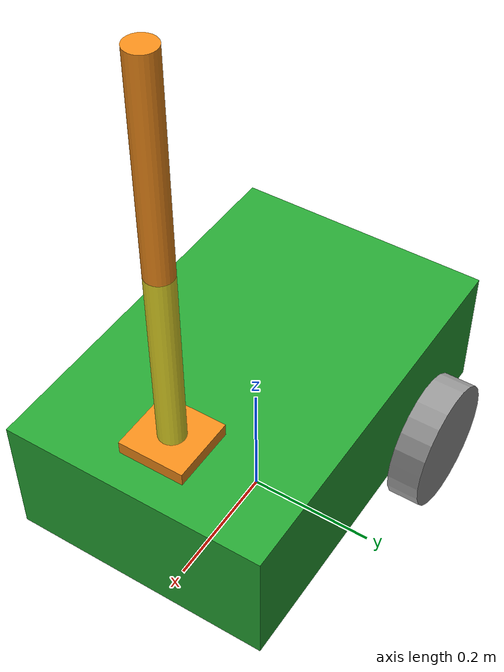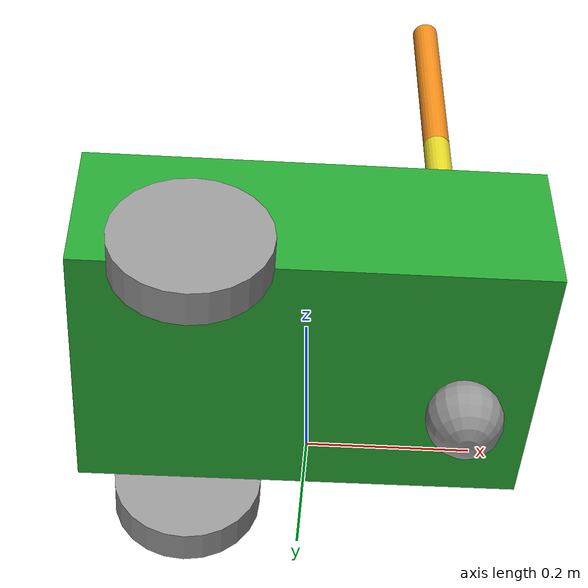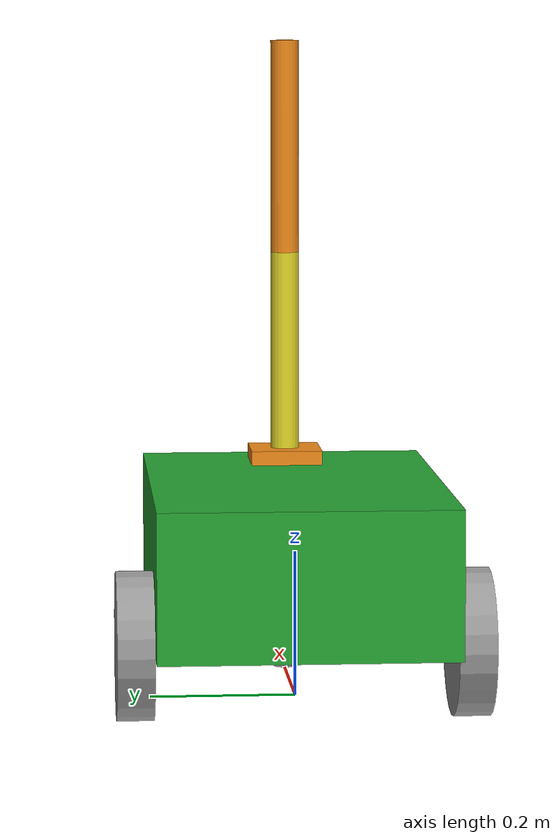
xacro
<?xml version="1.0"?>

<robot xmlns:xacro="http://www.ros.org/wiki/xacro">

    <xacro:property name="base_length" value="0.6" />
    <xacro:property name="base_width" value="0.4" />
    <xacro:property name="base_height" value="0.2" />
    <xacro:property name="wheel_radius" value="0.1" />
    <xacro:property name="wheel_length" value="0.05" />
    <xacro:include filename="robotic_arm.xacro" />

    <link name="base_link">
        <visual>
            <geometry>
                <box size="${base_length} ${base_width} ${base_height}" />
            </geometry>
            <origin xyz="0 0 ${base_height / 2.0}" rpy="0 0 0" />
            <material name="green" />
        </visual>
        <collision>
            <geometry>
                <box size="${base_length} ${base_width} ${base_height}" />
            </geometry>
            <origin xyz="0 0 ${base_height / 2.0}" rpy="0 0 0" />
        </collision>
        <xacro:box_inertial m="5.0" l="${2*base_length}"
        w="${2*base_width}" h="${2*base_height}" xyz="0 0 ${base_height / 2.0}" rpy="0 0 0" />
    </link>

    <xacro:macro name="wheel_link" params="prefix">
        <link name="${prefix}_wheel_link">
            <visual>
                <geometry>
                    <cylinder radius="${wheel_radius}" length="${wheel_length}" />
                </geometry>
                <origin xyz="0 0 0" rpy="${pi / 2.0} 0 0" />
                <material name="grey" />
            </visual>
            <collision>
                <geometry>
                    <cylinder radius="${wheel_radius}" length="${wheel_length}" />
                </geometry>
                <origin xyz="0 0 0" rpy="${pi / 2.0} 0 0" />
            </collision>
            <xacro:wheel_inertial m="1.0" r="${2*wheel_radius}" l="${2*wheel_length}" xyz="0 0 0"
            rpy="${pi / 2.0} 0 0" />
        </link>

    </xacro:macro>

    <xacro:wheel_link prefix="right" />
    <xacro:wheel_link prefix="left" />

    <link name="caster_wheel_link">
        <visual>
            <geometry>
                <sphere radius="${wheel_length}" />
            </geometry>
            <origin xyz="0 0 ${-wheel_radius / 2.0}" rpy="0 0 0" />
            <material name="grey" />
        </visual>
        <collision>
            <geometry>
                <sphere radius="${wheel_length}" />
            </geometry>
            <origin xyz="0 0 ${-wheel_radius / 2.0}" rpy="0 0 0" />
        </collision>
        <xacro:caster_wheel_inertial m="0.5" r="${2*wheel_length}"
        xyz="0 0 ${-wheel_radius / 2.0}" rpy="0 0 0" />
    </link>

    <link name="base_footprint" />

    <joint name="base_right_wheel_joint" type="continuous">
        <parent link="base_link" />
        <child link="right_wheel_link" />
        <origin xyz="${-base_length / 4.0} ${-(base_width + wheel_length)/2.0} 0" rpy="0 0 0" />
        <axis xyz="0 1 0" />
    </joint>

     <joint name="base_left_wheel_joint" type="continuous">
        <parent link="base_link" />
        <child link="left_wheel_link" />
        <origin xyz="${-base_length / 4.0} ${(base_width + wheel_length)/2.0} 0" rpy="0 0 0" />
        <axis xyz="0 1 0" />
    </joint>

    <joint name="base_caster_wheel_joint" type="fixed">
        <parent link="base_link" />
        <child link="caster_wheel_link" />
        <origin xyz="${base_length / 3.0} 0 0" rpy="0 0 0" />
    </joint>

    <joint name="base_joint" type="fixed">
        <parent link="base_footprint" />
        <child link="base_link" />
        <origin xyz="0 0 ${wheel_radius}" rpy="0 0 0" />
    </joint>

    <joint name="base_arm_base_joint" type="fixed">
        <parent link="base_link" />
        <child link="arm_base_link" />
        <origin xyz="${base_length/3} 0 ${base_height}" rpy="0 0 0" />
    </joint>

</robot>

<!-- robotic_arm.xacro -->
<robot xmlns:xacro="http://www.ros.org/wiki/xacro">

    <xacro:property name="arm_base_length" value="0.1" />
    <xacro:property name="arm_base_width" value="0.1" />
    <xacro:property name="arm_base_height" value="0.02" />
    <xacro:property name="common_arm_radius" value="0.02" />
    <xacro:property name="common_arm_length" value="0.3" />

    <link name="arm_base_link">
        <visual>
            <geometry>
                <box size="${arm_base_length} ${arm_base_width} ${arm_base_height}" />
            </geometry>
            <origin xyz="0 0 ${arm_base_height/2}" rpy="0 0 0" />
            <material name="orange" />
        </visual>
        <collision>
            <geometry>
                <box size="${arm_base_length} ${arm_base_width} ${arm_base_height}" />
            </geometry>
            <origin xyz="0 0 0" rpy="0 0 0" />
        </collision>
        <xacro:box_inertial m="0.5" l="${arm_base_length}" w="${arm_base_width}"
        h="${arm_base_height}" xyz="0 0 0" rpy="0 0 0" />
    </link>

    <xacro:macro name="arm_link" params="prefix color">
        <link name="${prefix}_link">
            <visual>
                <geometry>
                    <cylinder radius="${common_arm_radius}" length="${common_arm_length}" />
                </geometry>
                <origin xyz="0 0 ${common_arm_length/2}" rpy="0 0 0" />
                <material name="${color}" />
            </visual>
            <collision>
                <geometry>
                    <cylinder radius="${common_arm_radius}" length="${common_arm_length}" />
                </geometry>
                <origin xyz="0 0 0" rpy="0 0 0" />
            </collision>
            <xacro:wheel_inertial m="0.3" r="${common_arm_radius}" l="${common_arm_length}"
            xyz="0 0 0" rpy="0 0 0" />
        </link>

    </xacro:macro>

    <xacro:arm_link prefix ="forearm" color="yellow" />
    <xacro:arm_link prefix="hand" color="orange" />

    <joint name="arm_base_forearm_joint" type="revolute">
        <parent link="arm_base_link" />
        <child link="forearm_link" />
        <origin xyz="0 0 0" rpy="0 0 0" />
        <limit lower="0" upper="${pi/2}" effort="100" velocity="100" />
        <dynamic friction="0.05" damping="0.1" />
        <axis xyz="0 1 0"/>
    </joint>

    <joint name="forearm_hand_joint" type="revolute">
        <parent link="forearm_link" />
        <child link="hand_link"/>
        <origin xyz="0 0 ${common_arm_length}" rpy="0 0 0" />
        <limit lower="0" upper="${pi/2}" effort="100" velocity="100" />
        <dynamic friction="0.05" damping="0.1" />
        <axis xyz="0 1 0"/>
    </joint>

</robot>
